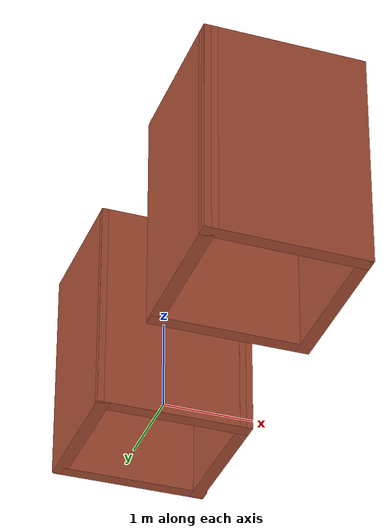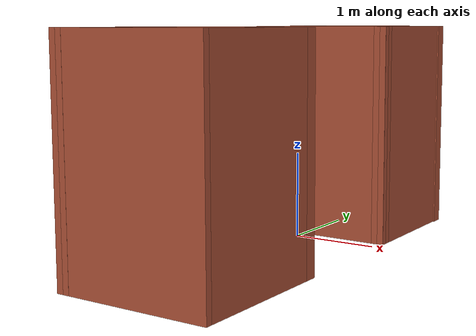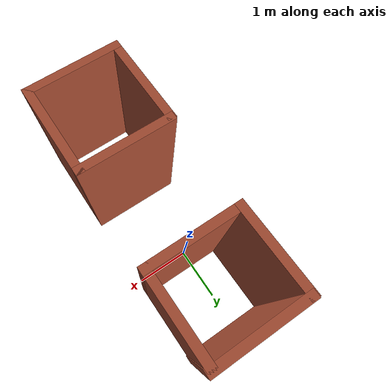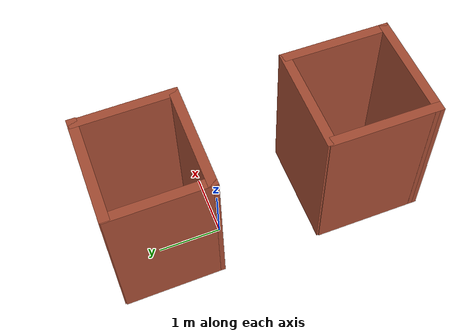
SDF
<?xml version='1.0'?>
<sdf version='1.6'>
  <model name='TwoShells'>
    <pose frame=''>0.194634 -0.719705 0 0 -0 0</pose>
    <link name='Wall_0'>
      <collision name='Wall_0_Collision'>
        <geometry>
          <box>
            <size>1.75 0.15 2.5</size>
          </box>
        </geometry>
        <pose frame=''>0 0 1.25 0 -0 0</pose>
      </collision>
      <visual name='Wall_0_Visual'>
        <pose frame=''>0 0 1.25 0 -0 0</pose>
        <geometry>
          <box>
            <size>1.75 0.15 2.5</size>
          </box>
        </geometry>
        <material>
          <script>
            <uri>file://media/materials/scripts/gazebo.material</uri>
            <name>Gazebo/Bricks</name>
          </script>
          <ambient>1 1 1 1</ambient>
        </material>
        <meta>
          <layer>0</layer>
        </meta>
      </visual>
      <pose frame=''>0.019959 -0.780076 0 0 -0 3.14159</pose>
    </link>
    <link name='Wall_1'>
      <collision name='Wall_1_Collision'>
        <geometry>
          <box>
            <size>1.75 0.15 2.5</size>
          </box>
        </geometry>
        <pose frame=''>0 0 1.25 0 -0 0</pose>
      </collision>
      <visual name='Wall_1_Visual'>
        <pose frame=''>0 0 1.25 0 -0 0</pose>
        <geometry>
          <box>
            <size>1.75 0.15 2.5</size>
          </box>
        </geometry>
        <material>
          <script>
            <uri>file://media/materials/scripts/gazebo.material</uri>
            <name>Gazebo/Bricks</name>
          </script>
          <ambient>1 1 1 1</ambient>
        </material>
        <meta>
          <layer>0</layer>
        </meta>
      </visual>
      <pose frame=''>-0.79525 -1.61049 0 0 0 -1.5708</pose>
    </link>
    <link name='Wall_10'>
      <collision name='Wall_10_Collision'>
        <geometry>
          <box>
            <size>1.75 0.15 2.5</size>
          </box>
        </geometry>
        <pose frame=''>0 0 1.25 0 -0 0</pose>
      </collision>
      <visual name='Wall_10_Visual'>
        <pose frame=''>0 0 1.25 0 -0 0</pose>
        <geometry>
          <box>
            <size>1.75 0.15 2.5</size>
          </box>
        </geometry>
        <material>
          <script>
            <uri>file://media/materials/scripts/gazebo.material</uri>
            <name>Gazebo/Bricks</name>
          </script>
          <ambient>1 1 1 1</ambient>
        </material>
        <meta>
          <layer>0</layer>
        </meta>
      </visual>
      <pose frame=''>-0.004674 2.4112 0 0 -0 3.14159</pose>
    </link>
    <link name='Wall_11'>
      <collision name='Wall_11_Collision'>
        <geometry>
          <box>
            <size>1.60654 0.15 2.5</size>
          </box>
        </geometry>
        <pose frame=''>0 0 1.25 0 -0 0</pose>
      </collision>
      <visual name='Wall_11_Visual'>
        <pose frame=''>0 0 1.25 0 -0 0</pose>
        <geometry>
          <box>
            <size>1.60654 0.15 2.5</size>
          </box>
        </geometry>
        <material>
          <script>
            <uri>file://media/materials/scripts/gazebo.material</uri>
            <name>Gazebo/Bricks</name>
          </script>
          <ambient>1 1 1 1</ambient>
        </material>
        <meta>
          <layer>0</layer>
        </meta>
      </visual>
      <pose frame=''>-0.812278 1.66776 0 0 0 -1.56035</pose>
    </link>
    <link name='Wall_2'>
      <collision name='Wall_2_Collision'>
        <geometry>
          <box>
            <size>1.76528 0.15 2.5</size>
          </box>
        </geometry>
        <pose frame=''>0 0 1.25 0 -0 0</pose>
      </collision>
      <visual name='Wall_2_Visual'>
        <pose frame=''>0 0 1.25 0 -0 0</pose>
        <geometry>
          <box>
            <size>1.76528 0.15 2.5</size>
          </box>
        </geometry>
        <material>
          <script>
            <uri>file://media/materials/scripts/gazebo.material</uri>
            <name>Gazebo/Bricks</name>
          </script>
          <ambient>1 1 1 1</ambient>
        </material>
        <meta>
          <layer>0</layer>
        </meta>
      </visual>
      <pose frame=''>0.012354 -2.40289 0 0 -0 0.009416</pose>
    </link>
    <link name='Wall_6'>
      <collision name='Wall_6_Collision'>
        <geometry>
          <box>
            <size>1.75 0.15 2.5</size>
          </box>
        </geometry>
        <pose frame=''>0 0 1.25 0 -0 0</pose>
      </collision>
      <visual name='Wall_6_Visual'>
        <pose frame=''>0 0 1.25 0 -0 0</pose>
        <geometry>
          <box>
            <size>1.75 0.15 2.5</size>
          </box>
        </geometry>
        <material>
          <script>
            <uri>file://media/materials/scripts/gazebo.material</uri>
            <name>Gazebo/Bricks</name>
          </script>
          <ambient>1 1 1 1</ambient>
        </material>
        <meta>
          <layer>0</layer>
        </meta>
      </visual>
      <pose frame=''>0.819959 -1.58008 0 0 -0 1.5708</pose>
    </link>
    <link name='Wall_8'>
      <collision name='Wall_8_Collision'>
        <geometry>
          <box>
            <size>1.75 0.15 2.5</size>
          </box>
        </geometry>
        <pose frame=''>0 0 1.25 0 -0 0</pose>
      </collision>
      <visual name='Wall_8_Visual'>
        <pose frame=''>0 0 1.25 0 -0 0</pose>
        <geometry>
          <box>
            <size>1.75 0.15 2.5</size>
          </box>
        </geometry>
        <material>
          <script>
            <uri>file://media/materials/scripts/gazebo.material</uri>
            <name>Gazebo/Bricks</name>
          </script>
          <ambient>1 1 1 1</ambient>
        </material>
        <meta>
          <layer>0</layer>
        </meta>
      </visual>
      <pose frame=''>-0.004674 0.939526 0 0 -0 0</pose>
    </link>
    <link name='Wall_9'>
      <collision name='Wall_9_Collision'>
        <geometry>
          <box>
            <size>1.60654 0.15 2.5</size>
          </box>
        </geometry>
        <pose frame=''>0 0 1.25 0 -0 0</pose>
      </collision>
      <visual name='Wall_9_Visual'>
        <pose frame=''>0 0 1.25 0 -0 0</pose>
        <geometry>
          <box>
            <size>1.60654 0.15 2.5</size>
          </box>
        </geometry>
        <material>
          <script>
            <uri>file://media/materials/scripts/gazebo.material</uri>
            <name>Gazebo/Bricks</name>
          </script>
          <ambient>1 1 1 1</ambient>
        </material>
        <meta>
          <layer>0</layer>
        </meta>
      </visual>
      <pose frame=''>0.787722 1.66776 0 0 -0 1.58124</pose>
    </link>
    <static>1</static>
  </model>
</sdf>
